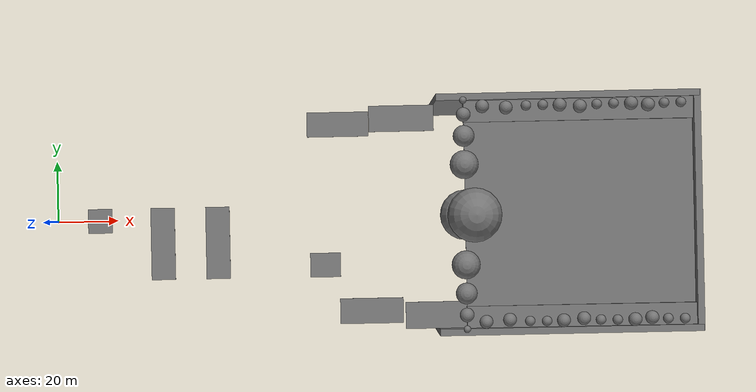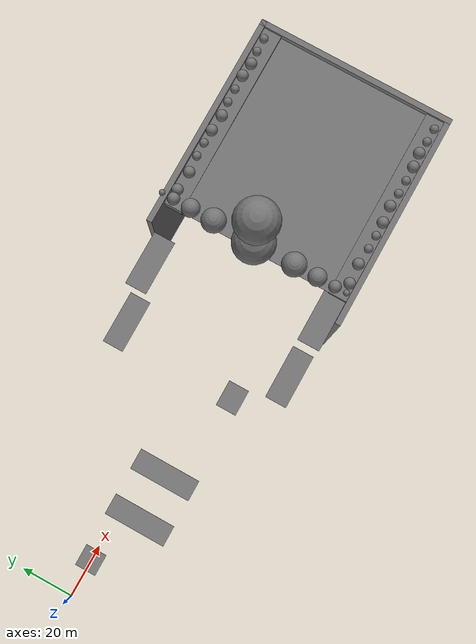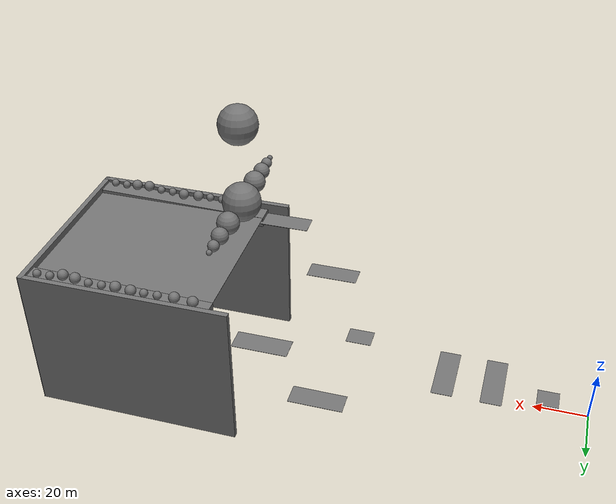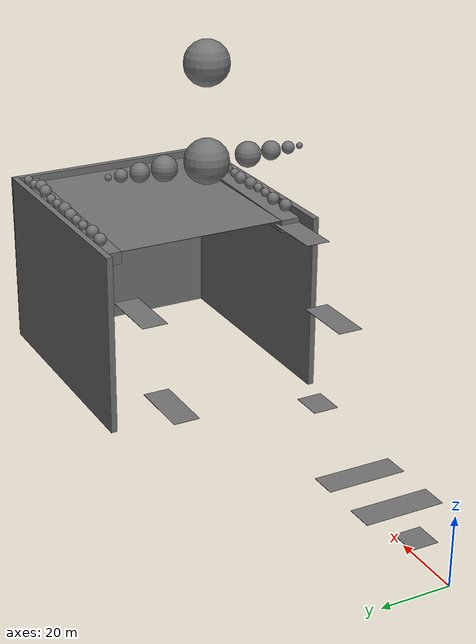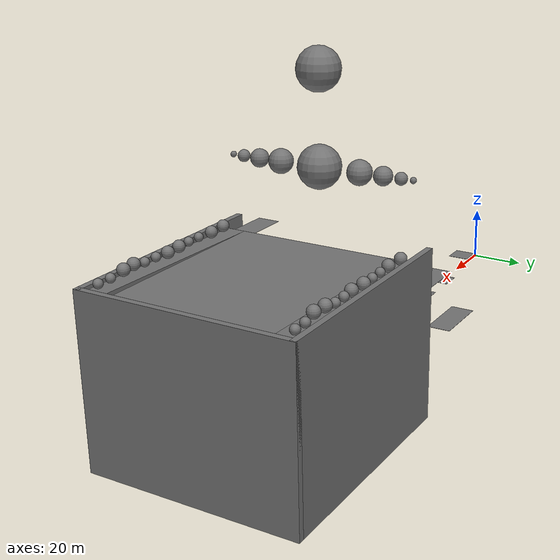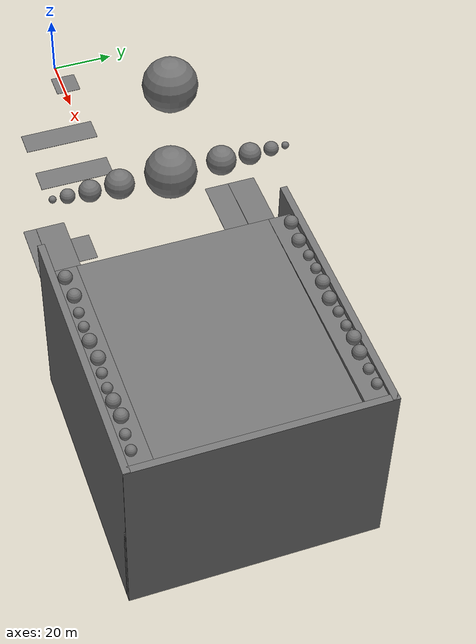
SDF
<sdf version="1.10">
 <world name="waterworld">
  <model name="north_arena_floor_model">
   <static>true</static>
   <pose>15 0 5 0 0 0</pose>
   <link name="north_arena_floor_link">
    <collision name="col">
     <geometry><box><size>8 8 0.1</size></box></geometry>
     <surface>
      <friction><ode><mu>0.9</mu><mu2>0.9</mu2><fdir1>1 0 0</fdir1></ode></friction>
      <bounce><restitution_coefficient>0.03</restitution_coefficient><threshold>1e3</threshold></bounce>
      <contact><ode><kp>1e6</kp><kd>1e3</kd><max_vel>1.0</max_vel><min_depth>0.001</min_depth></ode></contact>
     </surface>
    </collision>
    <visual name="vis">
     <geometry><box><size>8 8 0.1</size></box></geometry>
     <material>
      <ambient>0.35 0.35 0.35 1</ambient>
      <diffuse>0.45 0.45 0.45 1</diffuse>
      <pbr>
       <metal>
        <albedo_map>model://textures/grass_textures/green_grass_seamless.jpg</albedo_map>
        <roughness>0.9</roughness>
        <metalness>0.0</metalness>
       </metal>
      </pbr>
     </material>
    </visual>
   </link>
  </model>
  <model name="tidal_island_segment_1_floor_model">
   <static>true</static>
   <pose>35 -8 0.8 0 0 0</pose>
   <link name="north_arena_floor_link">
    <collision name="col">
     <geometry><box><size>8 24 0.1</size></box></geometry>
     <surface>
      <friction><ode><mu>0.9</mu><mu2>0.9</mu2><fdir1>1 0 0</fdir1></ode></friction>
      <bounce><restitution_coefficient>0.03</restitution_coefficient><threshold>1e3</threshold></bounce>
      <contact><ode><kp>1e6</kp><kd>1e3</kd><max_vel>1.0</max_vel><min_depth>0.001</min_depth></ode></contact>
     </surface>
    </collision>
    <visual name="vis">
     <geometry><box><size>8 24 0.1</size></box></geometry>
     <material>
      <ambient>0.35 0.35 0.35 1</ambient>
      <diffuse>0.45 0.45 0.45 1</diffuse>
      <pbr>
       <metal>
        <albedo_map>model://textures/grass_textures/green_grass_seamless.jpg</albedo_map>
        <roughness>0.9</roughness>
        <metalness>0.0</metalness>
       </metal>
      </pbr>
     </material>
    </visual>
   </link>
  </model>
  <model name="tidal_island_segment_5_floor_model">
   <static>true</static>
   <pose>53.3641 -8 0.7999 0 0 0</pose>
   <link name="north_arena_floor_link">
    <collision name="col">
     <geometry><box><size>8 24 0.1</size></box></geometry>
     <surface>
      <friction><ode><mu>0.9</mu><mu2>0.9</mu2><fdir1>1 0 0</fdir1></ode></friction>
      <bounce><restitution_coefficient>0.03</restitution_coefficient><threshold>1e3</threshold></bounce>
      <contact><ode><kp>1e6</kp><kd>1e3</kd><max_vel>1.0</max_vel><min_depth>0.001</min_depth></ode></contact>
     </surface>
    </collision>
    <visual name="vis">
     <geometry><box><size>8 24 0.1</size></box></geometry>
     <material>
      <ambient>0.35 0.35 0.35 1</ambient>
      <diffuse>0.45 0.45 0.45 1</diffuse>
      <pbr>
       <metal>
        <albedo_map>model://textures/grass_textures/green_grass_seamless.jpg</albedo_map>
        <roughness>0.9</roughness>
        <metalness>0.0</metalness>
       </metal>
      </pbr>
     </material>
    </visual>
   </link>
  </model>
  <model name="ramp_tower_left_landing_1_floor">
   <static>true</static>
   <pose>94.29 30 12 0 0 0</pose>
   <link name="west_arena_floor_link">
    <collision name="col">
     <geometry><box><size>20 8 0.1</size></box></geometry>
     <surface>
      <friction><ode><mu>0.9</mu><mu2>0.9</mu2><fdir1>1 0 0</fdir1></ode></friction>
      <bounce><restitution_coefficient>0.03</restitution_coefficient><threshold>1e3</threshold></bounce>
      <contact><ode><kp>1e6</kp><kd>1e3</kd><max_vel>1.0</max_vel><min_depth>0.001</min_depth></ode></contact>
     </surface>
    </collision>
    <visual name="vis">
     <geometry><box><size>20 8 0.1</size></box></geometry>
     <material>
      <ambient>0.35 0.35 0.35 1</ambient>
      <diffuse>0.45 0.45 0.45 1</diffuse>
      <pbr>
       <metal>
        <albedo_map>model://textures/grass_textures/green_grass_seamless.jpg</albedo_map>
        <roughness>0.9</roughness>
        <metalness>0.0</metalness>
       </metal>
      </pbr>
     </material>
    </visual>
   </link>
  </model>
  <model name="ramp_tower_right_landing_1_floor">
   <static>true</static>
   <pose>89.29 -15.999 4.05 0 0 0</pose>
   <link name="west_arena_floor_link">
    <collision name="col">
     <geometry><box><size>10 8 0.1</size></box></geometry>
     <surface>
      <friction><ode><mu>0.9</mu><mu2>0.9</mu2><fdir1>1 0 0</fdir1></ode></friction>
      <bounce><restitution_coefficient>0.03</restitution_coefficient><threshold>1e3</threshold></bounce>
      <contact><ode><kp>1e6</kp><kd>1e3</kd><max_vel>1.0</max_vel><min_depth>0.001</min_depth></ode></contact>
     </surface>
    </collision>
    <visual name="vis">
     <geometry><box><size>10 8 0.1</size></box></geometry>
     <material>
      <ambient>0.35 0.35 0.35 1</ambient>
      <diffuse>0.45 0.45 0.45 1</diffuse>
      <pbr>
       <metal>
        <albedo_map>model://textures/grass_textures/green_grass_seamless.jpg</albedo_map>
        <roughness>0.9</roughness>
        <metalness>0.0</metalness>
       </metal>
      </pbr>
     </material>
    </visual>
   </link>
  </model>
  <model name="ramp_tower_left_landing_2_floor">
   <static>true</static>
   <pose>104.29 -30 22.524 0 0 0</pose>
   <link name="west_arena_floor_link">
    <collision name="col">
     <geometry><box><size>20 8 0.1</size></box></geometry>
     <surface>
      <friction><ode><mu>0.9</mu><mu2>0.9</mu2><fdir1>1 0 0</fdir1></ode></friction>
      <bounce><restitution_coefficient>0.03</restitution_coefficient><threshold>1e3</threshold></bounce>
      <contact><ode><kp>1e6</kp><kd>1e3</kd><max_vel>1.0</max_vel><min_depth>0.001</min_depth></ode></contact>
     </surface>
    </collision>
    <visual name="vis">
     <geometry><box><size>20 8 0.1</size></box></geometry>
     <material>
      <ambient>0.35 0.35 0.35 1</ambient>
      <diffuse>0.45 0.45 0.45 1</diffuse>
      <pbr>
       <metal>
        <albedo_map>model://textures/grass_textures/green_grass_seamless.jpg</albedo_map>
        <roughness>0.9</roughness>
        <metalness>0.0</metalness>
       </metal>
      </pbr>
     </material>
    </visual>
   </link>
  </model>
  <model name="ramp_tower_left_landing_3_floor">
   <static>true</static>
   <pose>114.29 30 33.074 0 0 0</pose>
   <link name="west_arena_floor_link">
    <collision name="col">
     <geometry><box><size>20 8 0.1</size></box></geometry>
     <surface>
      <friction><ode><mu>0.9</mu><mu2>0.9</mu2><fdir1>1 0 0</fdir1></ode></friction>
      <bounce><restitution_coefficient>0.03</restitution_coefficient><threshold>1e3</threshold></bounce>
      <contact><ode><kp>1e6</kp><kd>1e3</kd><max_vel>1.0</max_vel><min_depth>0.001</min_depth></ode></contact>
     </surface>
    </collision>
    <visual name="vis">
     <geometry><box><size>20 8 0.1</size></box></geometry>
     <material>
      <ambient>0.35 0.35 0.35 1</ambient>
      <diffuse>0.45 0.45 0.45 1</diffuse>
      <pbr>
       <metal>
        <albedo_map>model://textures/grass_textures/green_grass_seamless.jpg</albedo_map>
        <roughness>0.9</roughness>
        <metalness>0.0</metalness>
       </metal>
      </pbr>
     </material>
    </visual>
   </link>
  </model>
  <model name="ramp_tower_left_landing_4_floor">
   <static>true</static>
   <pose>124.29 -30 43.6245 0 0 0</pose>
   <link name="west_arena_floor_link">
    <collision name="col">
     <geometry><box><size>20 8 0.1</size></box></geometry>
     <surface>
      <friction><ode><mu>0.9</mu><mu2>0.9</mu2><fdir1>1 0 0</fdir1></ode></friction>
      <bounce><restitution_coefficient>0.03</restitution_coefficient><threshold>1e3</threshold></bounce>
      <contact><ode><kp>1e6</kp><kd>1e3</kd><max_vel>1.0</max_vel><min_depth>0.001</min_depth></ode></contact>
     </surface>
    </collision>
    <visual name="vis">
     <geometry><box><size>20 8 0.1</size></box></geometry>
     <material>
      <ambient>0.35 0.35 0.35 1</ambient>
      <diffuse>0.45 0.45 0.45 1</diffuse>
      <pbr>
       <metal>
        <albedo_map>model://textures/grass_textures/green_grass_seamless.jpg</albedo_map>
        <roughness>0.9</roughness>
        <metalness>0.0</metalness>
       </metal>
      </pbr>
     </material>
    </visual>
   </link>
  </model>
  <model name="ramp_tower_top_2_floor">
   <static>true</static>
   <pose>167.571 0 45.229 0 0 0</pose>
   <link name="west_arena_floor_link">
    <collision name="col">
     <geometry><box><size>70 68 0.1</size></box></geometry>
     <surface>
      <friction><ode><mu>0.9</mu><mu2>0.9</mu2><fdir1>1 0 0</fdir1></ode></friction>
      <bounce><restitution_coefficient>0.03</restitution_coefficient><threshold>1e3</threshold></bounce>
      <contact><ode><kp>1e6</kp><kd>1e3</kd><max_vel>1.0</max_vel><min_depth>0.001</min_depth></ode></contact>
     </surface>
    </collision>
    <visual name="vis">
     <geometry><box><size>70 68 0.1</size></box></geometry>
     <material>
      <ambient>0.35 0.35 0.35 1</ambient>
      <diffuse>0.45 0.45 0.45 1</diffuse>
      <pbr>
       <metal>
        <albedo_map>model://textures/grass_textures/green_grass_seamless_8x9.png</albedo_map>
        <roughness>0.9</roughness>
        <metalness>0.0</metalness>
       </metal>
      </pbr>
     </material>
    </visual>
   </link>
  </model>
  <model name="tower_top_ramp_left_1">
   <static>true</static>
   <link name="link">
    <pose>166.85 31 43.97 0 -0.02 0</pose>
    <collision name="col"><geometry><box><size>68.5 7 4</size></box></geometry></collision>
    <visual name="vis">
     <geometry><box><size>68.5 7 4</size></box></geometry>
     <material>
      <ambient>0.35 0.35 0.35 1</ambient>
      <diffuse>0.45 0.45 0.45 1</diffuse>
      <pbr>
       <metal>
        <albedo_map>model://textures/stone_textures/stone_wall_seamless_1x3.jpg</albedo_map>
        <roughness>0.9</roughness>
        <metalness>0.0</metalness>
       </metal>
      </pbr>
     </material>
    </visual>
   </link>
  </model>
  <model name="tower_top_ramp_right_1">
   <static>true</static>
   <link name="link">
    <pose>166.85 -31 43.97 0 -0.02 0</pose>
    <collision name="col"><geometry><box><size>68.5 7 4</size></box></geometry></collision>
    <visual name="vis">
     <geometry><box><size>68.5 7 4</size></box></geometry>
     <material>
      <ambient>0.35 0.35 0.35 1</ambient>
      <diffuse>0.45 0.45 0.45 1</diffuse>
      <pbr>
       <metal>
        <albedo_map>model://textures/stone_textures/stone_wall_seamless_1x3.jpg</albedo_map>
        <roughness>0.9</roughness>
        <metalness>0.0</metalness>
       </metal>
      </pbr>
     </material>
    </visual>
   </link>
  </model>
  <model name="tower_wall_left_1">
   <static>true</static>
   <link name="link">
    <pose>163.55 35 18.7 0 0 0</pose>
    <collision name="col"><geometry><box><size>78.5 2 58</size></box></geometry></collision>
    <visual name="vis">
     <geometry><box><size>78.5 2 58</size></box></geometry>
     <material>
      <ambient>0.35 0.35 0.35 1</ambient>
      <diffuse>0.45 0.45 0.45 1</diffuse>
      <pbr>
       <metal>
        <albedo_map>model://textures/stone_textures/stone_wall_seamless_1x1.jpg</albedo_map>
        <roughness>0.9</roughness>
        <metalness>0.0</metalness>
       </metal>
      </pbr>
     </material>
    </visual>
   </link>
  </model>
  <model name="tower_wall_right_1">
   <static>true</static>
   <link name="link">
    <pose>163.55 -35 18.7 0 0 0</pose>
    <collision name="col"><geometry><box><size>78.5 2 58</size></box></geometry></collision>
    <visual name="vis">
     <geometry><box><size>78.5 2 58</size></box></geometry>
     <material>
      <ambient>0.35 0.35 0.35 1</ambient>
      <diffuse>0.45 0.45 0.45 1</diffuse>
      <pbr>
       <metal>
        <albedo_map>model://textures/stone_textures/stone_wall_seamless_1x1.jpg</albedo_map>
        <roughness>0.9</roughness>
        <metalness>0.0</metalness>
       </metal>
      </pbr>
     </material>
    </visual>
   </link>
  </model>
  <model name="tower_wall_back">
   <static>true</static>
   <link name="link">
    <pose>202 0 18.7 0 0 0</pose>
    <collision name="col"><geometry><box><size>2 72 58</size></box></geometry></collision>
    <visual name="vis">
     <geometry><box><size>2 72 58</size></box></geometry>
     <material>
      <ambient>0.35 0.35 0.35 1</ambient>
      <diffuse>0.45 0.45 0.45 1</diffuse>
      <pbr>
       <metal>
        <albedo_map>model://textures/stone_textures/stone_wall_seamless_1x1.jpg</albedo_map>
        <roughness>0.9</roughness>
        <metalness>0.0</metalness>
       </metal>
      </pbr>
     </material>
    </visual>
   </link>
  </model>
  <model name="falling_sphere_1">
   <static>false</static>
   <link name="link">
    <pose>130.5 32 70 0 0 3.145</pose>
    <collision name="col"><geometry><sphere><radius>1</radius></sphere></geometry></collision>
    <visual name="vis">
     <geometry><sphere><radius>1</radius></sphere></geometry>
     <material>
      <ambient>0.35 0.35 0.35 1</ambient>
      <diffuse>0.45 0.45 0.45 1</diffuse>
      <pbr>
       <metal>
        <albedo_map>model://textures/stone_textures/stone_wall_seamless_1x1.jpg</albedo_map>
        <roughness>0.9</roughness>
        <metalness>0.0</metalness>
       </metal>
      </pbr>
     </material>
    </visual>
   </link>
  </model>
  <model name="falling_sphere_2">
   <static>false</static>
   <link name="link">
    <pose>130.5 28 70 0 0 3.145</pose>
    <collision name="col"><geometry><sphere><radius>2</radius></sphere></geometry></collision>
    <visual name="vis">
     <geometry><sphere><radius>2</radius></sphere></geometry>
     <material>
      <ambient>0.35 0.35 0.35 1</ambient>
      <diffuse>0.45 0.45 0.45 1</diffuse>
      <pbr>
       <metal>
        <albedo_map>model://textures/stone_textures/stone_wall_seamless_1x1.jpg</albedo_map>
        <roughness>0.9</roughness>
        <metalness>0.0</metalness>
       </metal>
      </pbr>
     </material>
    </visual>
   </link>
  </model>
  <model name="falling_sphere_3">
   <static>false</static>
   <link name="link">
    <pose>130.5 22 70 0 0 3.145</pose>
    <collision name="col"><geometry><sphere><radius>3</radius></sphere></geometry></collision>
    <visual name="vis">
     <geometry><sphere><radius>3</radius></sphere></geometry>
     <material>
      <ambient>0.35 0.35 0.35 1</ambient>
      <diffuse>0.45 0.45 0.45 1</diffuse>
      <pbr>
       <metal>
        <albedo_map>model://textures/stone_textures/stone_wall_seamless_1x1.jpg</albedo_map>
        <roughness>0.9</roughness>
        <metalness>0.0</metalness>
       </metal>
      </pbr>
     </material>
    </visual>
   </link>
  </model>
  <model name="falling_sphere_4">
   <static>false</static>
   <link name="link">
    <pose>130.5 14 70 0 0 3.145</pose>
    <collision name="col"><geometry><sphere><radius>4</radius></sphere></geometry></collision>
    <visual name="vis">
     <geometry><sphere><radius>4</radius></sphere></geometry>
     <material>
      <ambient>0.35 0.35 0.35 1</ambient>
      <diffuse>0.45 0.45 0.45 1</diffuse>
      <pbr>
       <metal>
        <albedo_map>model://textures/stone_textures/stone_wall_seamless_1x1.jpg</albedo_map>
        <roughness>0.9</roughness>
        <metalness>0.0</metalness>
       </metal>
      </pbr>
     </material>
    </visual>
   </link>
  </model>
  <model name="falling_sphere_5">
   <static>false</static>
   <link name="link">
    <pose>130.5 0 70 0 0 3.145</pose>
    <collision name="col"><geometry><sphere><radius>7</radius></sphere></geometry></collision>
    <visual name="vis">
     <geometry><sphere><radius>7</radius></sphere></geometry>
     <material>
      <ambient>0.35 0.35 0.35 1</ambient>
      <diffuse>0.45 0.45 0.45 1</diffuse>
      <pbr>
       <metal>
        <albedo_map>model://textures/stone_textures/stone_wall_seamless_1x1.jpg</albedo_map>
        <roughness>0.9</roughness>
        <metalness>0.0</metalness>
       </metal>
      </pbr>
     </material>
    </visual>
   </link>
  </model>
  <model name="falling_sphere_6">
   <static>false</static>
   <link name="link">
    <pose>130.5 -14 70 0 0 3.145</pose>
    <collision name="col"><geometry><sphere><radius>4</radius></sphere></geometry></collision>
    <visual name="vis">
     <geometry><sphere><radius>4</radius></sphere></geometry>
     <material>
      <ambient>0.35 0.35 0.35 1</ambient>
      <diffuse>0.45 0.45 0.45 1</diffuse>
      <pbr>
       <metal>
        <albedo_map>model://textures/stone_textures/stone_wall_seamless_1x1.jpg</albedo_map>
        <roughness>0.9</roughness>
        <metalness>0.0</metalness>
       </metal>
      </pbr>
     </material>
    </visual>
   </link>
  </model>
  <model name="falling_sphere_7">
   <static>false</static>
   <link name="link">
    <pose>130.5 -22 70 0 0 3.145</pose>
    <collision name="col"><geometry><sphere><radius>3</radius></sphere></geometry></collision>
    <visual name="vis">
     <geometry><sphere><radius>3</radius></sphere></geometry>
     <material>
      <ambient>0.35 0.35 0.35 1</ambient>
      <diffuse>0.45 0.45 0.45 1</diffuse>
      <pbr>
       <metal>
        <albedo_map>model://textures/stone_textures/stone_wall_seamless_1x1.jpg</albedo_map>
        <roughness>0.9</roughness>
        <metalness>0.0</metalness>
       </metal>
      </pbr>
     </material>
    </visual>
   </link>
  </model>
  <model name="falling_sphere_8">
   <static>false</static>
   <link name="link">
    <pose>130.5 -28 70 0 0 3.145</pose>
    <collision name="col"><geometry><sphere><radius>2</radius></sphere></geometry></collision>
    <visual name="vis">
     <geometry><sphere><radius>2</radius></sphere></geometry>
     <material>
      <ambient>0.35 0.35 0.35 1</ambient>
      <diffuse>0.45 0.45 0.45 1</diffuse>
      <pbr>
       <metal>
        <albedo_map>model://textures/stone_textures/stone_wall_seamless_1x1.jpg</albedo_map>
        <roughness>0.9</roughness>
        <metalness>0.0</metalness>
       </metal>
      </pbr>
     </material>
    </visual>
   </link>
  </model>
  <model name="falling_sphere_9">
   <static>false</static>
   <link name="link">
    <pose>130.5 -32 70 0 0 3.145</pose>
    <collision name="col"><geometry><sphere><radius>1</radius></sphere></geometry></collision>
    <visual name="vis">
     <geometry><sphere><radius>1</radius></sphere></geometry>
     <material>
      <ambient>0.35 0.35 0.35 1</ambient>
      <diffuse>0.45 0.45 0.45 1</diffuse>
      <pbr>
       <metal>
        <albedo_map>model://textures/stone_textures/stone_wall_seamless_1x1.jpg</albedo_map>
        <roughness>0.9</roughness>
        <metalness>0.0</metalness>
       </metal>
      </pbr>
     </material>
    </visual>
   </link>
  </model>
  <model name="falling_sphere_10">
   <static>false</static>
   <link name="link">
    <pose>130.5 0 100 0 0 3.145</pose>
    <collision name="col"><geometry><sphere><radius>7</radius></sphere></geometry></collision>
    <visual name="vis">
     <geometry><sphere><radius>7</radius></sphere></geometry>
     <material>
      <ambient>0.35 0.35 0.35 1</ambient>
      <diffuse>0.45 0.45 0.45 1</diffuse>
      <pbr>
       <metal>
        <albedo_map>model://textures/stone_textures/stone_wall_seamless_1x1.jpg</albedo_map>
        <roughness>0.9</roughness>
        <metalness>0.0</metalness>
       </metal>
      </pbr>
     </material>
    </visual>
   </link>
  </model>
  <model name="falling_sphere_11">
   <static>false</static>
   <link name="link">
    <pose>138 32 48 0 0 3.145</pose>
    <collision name="col"><geometry><sphere><radius>2</radius></sphere></geometry></collision>
    <visual name="vis">
     <geometry><sphere><radius>2</radius></sphere></geometry>
     <material>
      <ambient>0.35 0.35 0.35 1</ambient>
      <diffuse>0.45 0.45 0.45 1</diffuse>
      <pbr>
       <metal>
        <albedo_map>model://textures/stone_textures/stone_wall_seamless_1x1.jpg</albedo_map>
        <roughness>0.9</roughness>
        <metalness>0.0</metalness>
       </metal>
      </pbr>
     </material>
    </visual>
   </link>
  </model>
  <model name="falling_sphere_12">
   <static>false</static>
   <link name="link">
    <pose>138 -32 48 0 0 3.145</pose>
    <collision name="col"><geometry><sphere><radius>2</radius></sphere></geometry></collision>
    <visual name="vis">
     <geometry><sphere><radius>2</radius></sphere></geometry>
     <material>
      <ambient>0.35 0.35 0.35 1</ambient>
      <diffuse>0.45 0.45 0.45 1</diffuse>
      <pbr>
       <metal>
        <albedo_map>model://textures/stone_textures/stone_wall_seamless_1x1.jpg</albedo_map>
        <roughness>0.9</roughness>
        <metalness>0.0</metalness>
       </metal>
      </pbr>
     </material>
    </visual>
   </link>
  </model>
  <model name="falling_sphere_13">
   <static>false</static>
   <link name="link">
    <pose>145 31.5 48 0 0 3.145</pose>
    <collision name="col"><geometry><sphere><radius>2</radius></sphere></geometry></collision>
    <visual name="vis">
     <geometry><sphere><radius>2</radius></sphere></geometry>
     <material>
      <ambient>0.35 0.35 0.35 1</ambient>
      <diffuse>0.45 0.45 0.45 1</diffuse>
      <pbr>
       <metal>
        <albedo_map>model://textures/stone_textures/stone_wall_seamless_1x1.jpg</albedo_map>
        <roughness>0.9</roughness>
        <metalness>0.0</metalness>
       </metal>
      </pbr>
     </material>
    </visual>
   </link>
  </model>
  <model name="falling_sphere_14">
   <static>false</static>
   <link name="link">
    <pose>145 -31.5 48 0 0 3.145</pose>
    <collision name="col"><geometry><sphere><radius>2</radius></sphere></geometry></collision>
    <visual name="vis">
     <geometry><sphere><radius>2</radius></sphere></geometry>
     <material>
      <ambient>0.35 0.35 0.35 1</ambient>
      <diffuse>0.45 0.45 0.45 1</diffuse>
      <pbr>
       <metal>
        <albedo_map>model://textures/stone_textures/stone_wall_seamless_1x1.jpg</albedo_map>
        <roughness>0.9</roughness>
        <metalness>0.0</metalness>
       </metal>
      </pbr>
     </material>
    </visual>
   </link>
  </model>
  <model name="falling_sphere_15">
   <static>false</static>
   <link name="link">
    <pose>151 32 48 0 0 3.145</pose>
    <collision name="col"><geometry><sphere><radius>1.5</radius></sphere></geometry></collision>
    <visual name="vis">
     <geometry><sphere><radius>1.5</radius></sphere></geometry>
     <material>
      <ambient>0.35 0.35 0.35 1</ambient>
      <diffuse>0.45 0.45 0.45 1</diffuse>
      <pbr>
       <metal>
        <albedo_map>model://textures/stone_textures/stone_wall_seamless_1x1.jpg</albedo_map>
        <roughness>0.9</roughness>
        <metalness>0.0</metalness>
       </metal>
      </pbr>
     </material>
    </visual>
   </link>
  </model>
  <model name="falling_sphere_16">
   <static>false</static>
   <link name="link">
    <pose>151 -32 48 0 0 3.145</pose>
    <collision name="col"><geometry><sphere><radius>1.5</radius></sphere></geometry></collision>
    <visual name="vis">
     <geometry><sphere><radius>1.5</radius></sphere></geometry>
     <material>
      <ambient>0.35 0.35 0.35 1</ambient>
      <diffuse>0.45 0.45 0.45 1</diffuse>
      <pbr>
       <metal>
        <albedo_map>model://textures/stone_textures/stone_wall_seamless_1x1.jpg</albedo_map>
        <roughness>0.9</roughness>
        <metalness>0.0</metalness>
       </metal>
      </pbr>
     </material>
    </visual>
   </link>
  </model>
  <model name="falling_sphere_17">
   <static>false</static>
   <link name="link">
    <pose>156 32.1 48 0 0 3.145</pose>
    <collision name="col"><geometry><sphere><radius>1.5</radius></sphere></geometry></collision>
    <visual name="vis">
     <geometry><sphere><radius>1.5</radius></sphere></geometry>
     <material>
      <ambient>0.35 0.35 0.35 1</ambient>
      <diffuse>0.45 0.45 0.45 1</diffuse>
      <pbr>
       <metal>
        <albedo_map>model://textures/stone_textures/stone_wall_seamless_1x1.jpg</albedo_map>
        <roughness>0.9</roughness>
        <metalness>0.0</metalness>
       </metal>
      </pbr>
     </material>
    </visual>
   </link>
  </model>
  <model name="falling_sphere_18">
   <static>false</static>
   <link name="link">
    <pose>156 -32.1 48 0 0 3.145</pose>
    <collision name="col"><geometry><sphere><radius>1.5</radius></sphere></geometry></collision>
    <visual name="vis">
     <geometry><sphere><radius>1.5</radius></sphere></geometry>
     <material>
      <ambient>0.35 0.35 0.35 1</ambient>
      <diffuse>0.45 0.45 0.45 1</diffuse>
      <pbr>
       <metal>
        <albedo_map>model://textures/stone_textures/stone_wall_seamless_1x1.jpg</albedo_map>
        <roughness>0.9</roughness>
        <metalness>0.0</metalness>
       </metal>
      </pbr>
     </material>
    </visual>
   </link>
  </model>
  <model name="falling_sphere_19">
   <static>false</static>
   <link name="link">
    <pose>161 32 48 0 0 3.145</pose>
    <collision name="col"><geometry><sphere><radius>2</radius></sphere></geometry></collision>
    <visual name="vis">
     <geometry><sphere><radius>2</radius></sphere></geometry>
     <material>
      <ambient>0.35 0.35 0.35 1</ambient>
      <diffuse>0.45 0.45 0.45 1</diffuse>
      <pbr>
       <metal>
        <albedo_map>model://textures/stone_textures/stone_wall_seamless_1x1.jpg</albedo_map>
        <roughness>0.9</roughness>
        <metalness>0.0</metalness>
       </metal>
      </pbr>
     </material>
    </visual>
   </link>
  </model>
  <model name="falling_sphere_20">
   <static>false</static>
   <link name="link">
    <pose>161 -32 48 0 0 3.145</pose>
    <collision name="col"><geometry><sphere><radius>2</radius></sphere></geometry></collision>
    <visual name="vis">
     <geometry><sphere><radius>2</radius></sphere></geometry>
     <material>
      <ambient>0.35 0.35 0.35 1</ambient>
      <diffuse>0.45 0.45 0.45 1</diffuse>
      <pbr>
       <metal>
        <albedo_map>model://textures/stone_textures/stone_wall_seamless_1x1.jpg</albedo_map>
        <roughness>0.9</roughness>
        <metalness>0.0</metalness>
       </metal>
      </pbr>
     </material>
    </visual>
   </link>
  </model>
  <model name="falling_sphere_21">
   <static>false</static>
   <link name="link">
    <pose>167 31.5 48 0 0 3.145</pose>
    <collision name="col"><geometry><sphere><radius>2</radius></sphere></geometry></collision>
    <visual name="vis">
     <geometry><sphere><radius>2</radius></sphere></geometry>
     <material>
      <ambient>0.35 0.35 0.35 1</ambient>
      <diffuse>0.45 0.45 0.45 1</diffuse>
      <pbr>
       <metal>
        <albedo_map>model://textures/stone_textures/stone_wall_seamless_1x1.jpg</albedo_map>
        <roughness>0.9</roughness>
        <metalness>0.0</metalness>
       </metal>
      </pbr>
     </material>
    </visual>
   </link>
  </model>
  <model name="falling_sphere_22">
   <static>false</static>
   <link name="link">
    <pose>167 -31.5 48 0 0 3.145</pose>
    <collision name="col"><geometry><sphere><radius>2</radius></sphere></geometry></collision>
    <visual name="vis">
     <geometry><sphere><radius>2</radius></sphere></geometry>
     <material>
      <ambient>0.35 0.35 0.35 1</ambient>
      <diffuse>0.45 0.45 0.45 1</diffuse>
      <pbr>
       <metal>
        <albedo_map>model://textures/stone_textures/stone_wall_seamless_1x1.jpg</albedo_map>
        <roughness>0.9</roughness>
        <metalness>0.0</metalness>
       </metal>
      </pbr>
     </material>
    </visual>
   </link>
  </model>
  <model name="falling_sphere_23">
   <static>false</static>
   <link name="link">
    <pose>172 32 48 0 0 3.145</pose>
    <collision name="col"><geometry><sphere><radius>1.5</radius></sphere></geometry></collision>
    <visual name="vis">
     <geometry><sphere><radius>1.5</radius></sphere></geometry>
     <material>
      <ambient>0.35 0.35 0.35 1</ambient>
      <diffuse>0.45 0.45 0.45 1</diffuse>
      <pbr>
       <metal>
        <albedo_map>model://textures/stone_textures/stone_wall_seamless_1x1.jpg</albedo_map>
        <roughness>0.9</roughness>
        <metalness>0.0</metalness>
       </metal>
      </pbr>
     </material>
    </visual>
   </link>
  </model>
  <model name="falling_sphere_24">
   <static>false</static>
   <link name="link">
    <pose>172 -32 48 0 0 3.145</pose>
    <collision name="col"><geometry><sphere><radius>1.5</radius></sphere></geometry></collision>
    <visual name="vis">
     <geometry><sphere><radius>1.5</radius></sphere></geometry>
     <material>
      <ambient>0.35 0.35 0.35 1</ambient>
      <diffuse>0.45 0.45 0.45 1</diffuse>
      <pbr>
       <metal>
        <albedo_map>model://textures/stone_textures/stone_wall_seamless_1x1.jpg</albedo_map>
        <roughness>0.9</roughness>
        <metalness>0.0</metalness>
       </metal>
      </pbr>
     </material>
    </visual>
   </link>
  </model>
  <model name="falling_sphere_25">
   <static>false</static>
   <link name="link">
    <pose>177 32.1 48 0 0 3.145</pose>
    <collision name="col"><geometry><sphere><radius>1.5</radius></sphere></geometry></collision>
    <visual name="vis">
     <geometry><sphere><radius>1.5</radius></sphere></geometry>
     <material>
      <ambient>0.35 0.35 0.35 1</ambient>
      <diffuse>0.45 0.45 0.45 1</diffuse>
      <pbr>
       <metal>
        <albedo_map>model://textures/stone_textures/stone_wall_seamless_1x1.jpg</albedo_map>
        <roughness>0.9</roughness>
        <metalness>0.0</metalness>
       </metal>
      </pbr>
     </material>
    </visual>
   </link>
  </model>
  <model name="falling_sphere_26">
   <static>false</static>
   <link name="link">
    <pose>177 -32.1 48 0 0 3.145</pose>
    <collision name="col"><geometry><sphere><radius>1.5</radius></sphere></geometry></collision>
    <visual name="vis">
     <geometry><sphere><radius>1.5</radius></sphere></geometry>
     <material>
      <ambient>0.35 0.35 0.35 1</ambient>
      <diffuse>0.45 0.45 0.45 1</diffuse>
      <pbr>
       <metal>
        <albedo_map>model://textures/stone_textures/stone_wall_seamless_1x1.jpg</albedo_map>
        <roughness>0.9</roughness>
        <metalness>0.0</metalness>
       </metal>
      </pbr>
     </material>
    </visual>
   </link>
  </model>
  <model name="falling_sphere_27">
   <static>false</static>
   <link name="link">
    <pose>182 32 49 0 0 3.145</pose>
    <collision name="col"><geometry><sphere><radius>2</radius></sphere></geometry></collision>
    <visual name="vis">
     <geometry><sphere><radius>2</radius></sphere></geometry>
     <material>
      <ambient>0.35 0.35 0.35 1</ambient>
      <diffuse>0.45 0.45 0.45 1</diffuse>
      <pbr>
       <metal>
        <albedo_map>model://textures/stone_textures/stone_wall_seamless_1x1.jpg</albedo_map>
        <roughness>0.9</roughness>
        <metalness>0.0</metalness>
       </metal>
      </pbr>
     </material>
    </visual>
   </link>
  </model>
  <model name="falling_sphere_28">
   <static>false</static>
   <link name="link">
    <pose>182 -32 49 0 0 3.145</pose>
    <collision name="col"><geometry><sphere><radius>2</radius></sphere></geometry></collision>
    <visual name="vis">
     <geometry><sphere><radius>2</radius></sphere></geometry>
     <material>
      <ambient>0.35 0.35 0.35 1</ambient>
      <diffuse>0.45 0.45 0.45 1</diffuse>
      <pbr>
       <metal>
        <albedo_map>model://textures/stone_textures/stone_wall_seamless_1x1.jpg</albedo_map>
        <roughness>0.9</roughness>
        <metalness>0.0</metalness>
       </metal>
      </pbr>
     </material>
    </visual>
   </link>
  </model>
  <model name="falling_sphere_29">
   <static>false</static>
   <link name="link">
    <pose>187 31.5 49 0 0 3.145</pose>
    <collision name="col"><geometry><sphere><radius>2</radius></sphere></geometry></collision>
    <visual name="vis">
     <geometry><sphere><radius>2</radius></sphere></geometry>
     <material>
      <ambient>0.35 0.35 0.35 1</ambient>
      <diffuse>0.45 0.45 0.45 1</diffuse>
      <pbr>
       <metal>
        <albedo_map>model://textures/stone_textures/stone_wall_seamless_1x1.jpg</albedo_map>
        <roughness>0.9</roughness>
        <metalness>0.0</metalness>
       </metal>
      </pbr>
     </material>
    </visual>
   </link>
  </model>
  <model name="falling_sphere_30">
   <static>false</static>
   <link name="link">
    <pose>187 -31.5 49 0 0 3.145</pose>
    <collision name="col"><geometry><sphere><radius>2</radius></sphere></geometry></collision>
    <visual name="vis">
     <geometry><sphere><radius>2</radius></sphere></geometry>
     <material>
      <ambient>0.35 0.35 0.35 1</ambient>
      <diffuse>0.45 0.45 0.45 1</diffuse>
      <pbr>
       <metal>
        <albedo_map>model://textures/stone_textures/stone_wall_seamless_1x1.jpg</albedo_map>
        <roughness>0.9</roughness>
        <metalness>0.0</metalness>
       </metal>
      </pbr>
     </material>
    </visual>
   </link>
  </model>
  <model name="falling_sphere_31">
   <static>false</static>
   <link name="link">
    <pose>192 32 48 0 0 3.145</pose>
    <collision name="col"><geometry><sphere><radius>1.5</radius></sphere></geometry></collision>
    <visual name="vis">
     <geometry><sphere><radius>1.5</radius></sphere></geometry>
     <material>
      <ambient>0.35 0.35 0.35 1</ambient>
      <diffuse>0.45 0.45 0.45 1</diffuse>
      <pbr>
       <metal>
        <albedo_map>model://textures/stone_textures/stone_wall_seamless_1x1.jpg</albedo_map>
        <roughness>0.9</roughness>
        <metalness>0.0</metalness>
       </metal>
      </pbr>
     </material>
    </visual>
   </link>
  </model>
  <model name="falling_sphere_32">
   <static>false</static>
   <link name="link">
    <pose>192 -32 48 0 0 3.145</pose>
    <collision name="col"><geometry><sphere><radius>1.5</radius></sphere></geometry></collision>
    <visual name="vis">
     <geometry><sphere><radius>1.5</radius></sphere></geometry>
     <material>
      <ambient>0.35 0.35 0.35 1</ambient>
      <diffuse>0.45 0.45 0.45 1</diffuse>
      <pbr>
       <metal>
        <albedo_map>model://textures/stone_textures/stone_wall_seamless_1x1.jpg</albedo_map>
        <roughness>0.9</roughness>
        <metalness>0.0</metalness>
       </metal>
      </pbr>
     </material>
    </visual>
   </link>
  </model>
  <model name="falling_sphere_33">
   <static>false</static>
   <link name="link">
    <pose>197 32.1 48 0 0 3.145</pose>
    <collision name="col"><geometry><sphere><radius>1.5</radius></sphere></geometry></collision>
    <visual name="vis">
     <geometry><sphere><radius>1.5</radius></sphere></geometry>
     <material>
      <ambient>0.35 0.35 0.35 1</ambient>
      <diffuse>0.45 0.45 0.45 1</diffuse>
      <pbr>
       <metal>
        <albedo_map>model://textures/stone_textures/stone_wall_seamless_1x1.jpg</albedo_map>
        <roughness>0.9</roughness>
        <metalness>0.0</metalness>
       </metal>
      </pbr>
     </material>
    </visual>
   </link>
  </model>
  <model name="falling_sphere_34">
   <static>false</static>
   <link name="link">
    <pose>197 -32.1 48 0 0 3.145</pose>
    <collision name="col"><geometry><sphere><radius>1.5</radius></sphere></geometry></collision>
    <visual name="vis">
     <geometry><sphere><radius>1.5</radius></sphere></geometry>
     <material>
      <ambient>0.35 0.35 0.35 1</ambient>
      <diffuse>0.45 0.45 0.45 1</diffuse>
      <pbr>
       <metal>
        <albedo_map>model://textures/stone_textures/stone_wall_seamless_1x1.jpg</albedo_map>
        <roughness>0.9</roughness>
        <metalness>0.0</metalness>
       </metal>
      </pbr>
     </material>
    </visual>
   </link>
  </model>
 </world>
</sdf>
